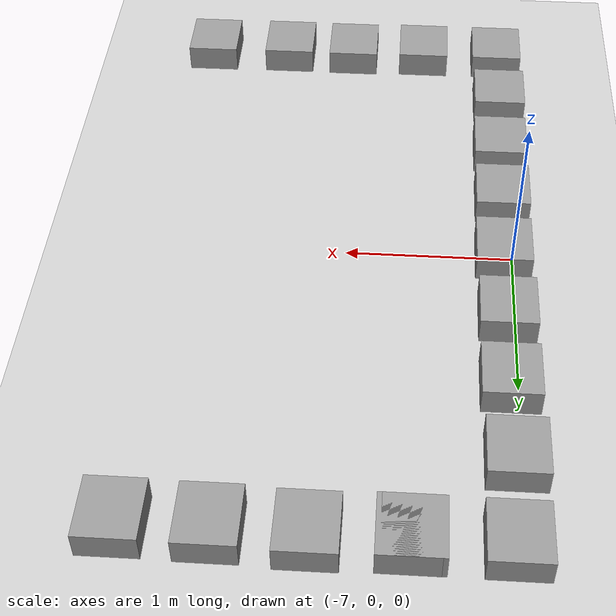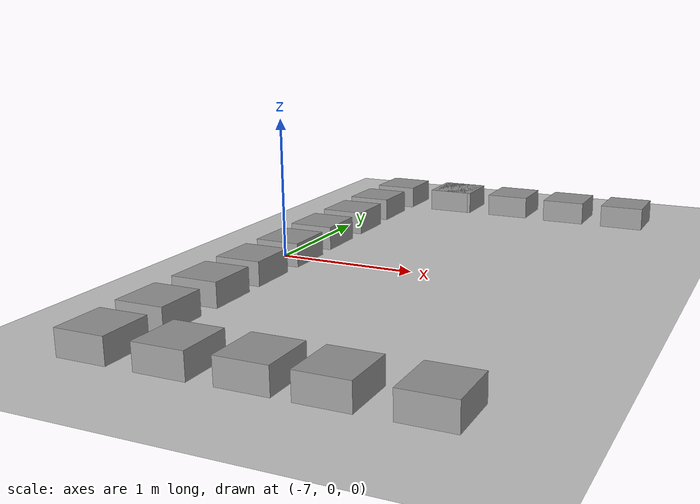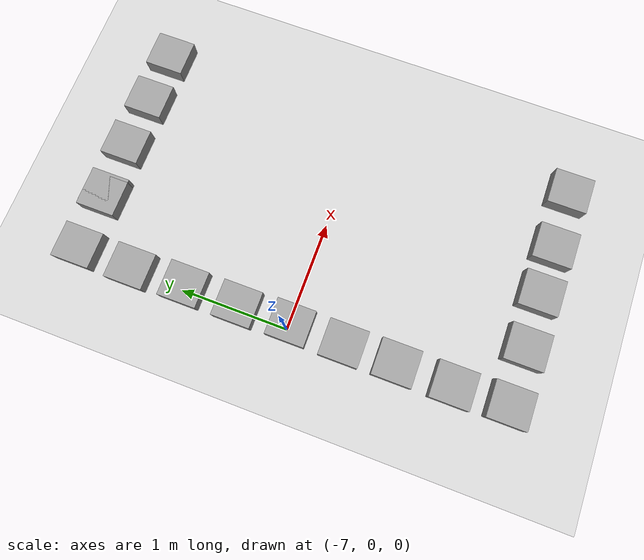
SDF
<sdf version="1.7">
 <world name="default">
  <model name="ground_plane">
   <static>1</static>
   <link name="link">
    <collision name="collision">
     <geometry><plane><normal>0 0 1</normal><size>100 100</size></plane></geometry>
     <surface>
      <contact><collide_bitmask>65535</collide_bitmask></contact>
      <friction><ode><mu>100</mu><mu2>50</mu2></ode></friction>
     </surface>
    </collision>
    <visual name="visual">
     <cast_shadows>0</cast_shadows>
     <geometry><plane><normal>0 0 1</normal><size>100 100</size></plane></geometry>
     <material>
      <script><uri>file://media/materials/scripts/gazebo.material</uri><name>Gazebo/Grey</name></script>
     </material>
    </visual>
   </link>
  </model>
  <model name="Room">
   <link name="link_0">
    <inertial>
     <mass>0.0389039</mass>
     <inertia>
      <ixx>0.000767207</ixx>
      <ixy>0</ixy>
      <ixz>0</ixz>
      <iyy>0.000705813</iyy>
      <iyz>0</iyz>
      <izz>0.000767038</izz>
     </inertia>
    </inertial>
    <pose>1.41657 1.8721 -0 0 -0 0</pose>
    <visual name="visual">
     <geometry><box><size>0.329892 0.357444 0.329971</size></box></geometry>
     <material>
      <lighting>1</lighting>
      <script><uri>file://media/materials/scripts/gazebo.material</uri><name>Gazebo/Grey</name></script>
      <shader type="pixel"/>
     </material>
    </visual>
    <collision name="collision">
     <geometry><box><size>0.329892 0.357444 0.329971</size></box></geometry>
     <surface>
      <friction>
       <ode><mu>1</mu><mu2>1</mu2><fdir1>0 0 0</fdir1><slip1>0</slip1><slip2>0</slip2></ode>
       <torsional>
        <coefficient>1</coefficient>
        <patch_radius>0</patch_radius>
        <surface_radius>0</surface_radius>
        <use_patch_radius>1</use_patch_radius>
        <ode><slip>0</slip></ode>
       </torsional>
      </friction>
      <bounce><restitution_coefficient>0</restitution_coefficient><threshold>1e+06</threshold></bounce>
      <contact>
       <collide_without_contact>0</collide_without_contact>
       <collide_without_contact_bitmask>1</collide_without_contact_bitmask>
       <collide_bitmask>1</collide_bitmask>
       <ode>
        <soft_cfm>0</soft_cfm>
        <soft_erp>0.2</soft_erp>
        <kp>1e+13</kp>
        <kd>1</kd>
        <max_vel>0.01</max_vel>
        <min_depth>0</min_depth>
       </ode>
       <bullet>
        <split_impulse>1</split_impulse>
        <split_impulse_penetration_threshold>-0.01</split_impulse_penetration_threshold>
        <soft_cfm>0</soft_cfm>
        <soft_erp>0.2</soft_erp>
        <kp>1e+13</kp>
        <kd>1</kd>
       </bullet>
      </contact>
     </surface>
    </collision>
   </link>
   <link name="link_0_clone">
    <inertial>
     <mass>0.0389039</mass>
     <inertia>
      <ixx>0.000767207</ixx>
      <ixy>0</ixy>
      <ixz>0</ixz>
      <iyy>0.000705813</iyy>
      <iyz>0</iyz>
      <izz>0.000767038</izz>
     </inertia>
    </inertial>
    <pose>0.444466 1.89101 0 0 -0 0</pose>
    <visual name="visual">
     <geometry><box><size>0.329892 0.357444 0.329971</size></box></geometry>
     <material>
      <lighting>1</lighting>
      <script><uri>file://media/materials/scripts/gazebo.material</uri><name>Gazebo/Grey</name></script>
      <shader type="pixel"/>
     </material>
    </visual>
    <collision name="collision">
     <geometry><box><size>0.329892 0.357444 0.329971</size></box></geometry>
     <surface>
      <friction>
       <ode><mu>1</mu><mu2>1</mu2><fdir1>0 0 0</fdir1><slip1>0</slip1><slip2>0</slip2></ode>
       <torsional>
        <coefficient>1</coefficient>
        <patch_radius>0</patch_radius>
        <surface_radius>0</surface_radius>
        <use_patch_radius>1</use_patch_radius>
        <ode><slip>0</slip></ode>
       </torsional>
      </friction>
      <bounce><restitution_coefficient>0</restitution_coefficient><threshold>1e+06</threshold></bounce>
      <contact>
       <collide_without_contact>0</collide_without_contact>
       <collide_without_contact_bitmask>1</collide_without_contact_bitmask>
       <collide_bitmask>1</collide_bitmask>
       <ode>
        <soft_cfm>0</soft_cfm>
        <soft_erp>0.2</soft_erp>
        <kp>1e+13</kp>
        <kd>1</kd>
        <max_vel>0.01</max_vel>
        <min_depth>0</min_depth>
       </ode>
       <bullet>
        <split_impulse>1</split_impulse>
        <split_impulse_penetration_threshold>-0.01</split_impulse_penetration_threshold>
        <soft_cfm>0</soft_cfm>
        <soft_erp>0.2</soft_erp>
        <kp>1e+13</kp>
        <kd>1</kd>
       </bullet>
      </contact>
     </surface>
    </collision>
   </link>
   <link name="link_0_clone_0">
    <inertial>
     <mass>0.0389039</mass>
     <inertia>
      <ixx>0.000767207</ixx>
      <ixy>0</ixy>
      <ixz>0</ixz>
      <iyy>0.000705813</iyy>
      <iyz>0</iyz>
      <izz>0.000767038</izz>
     </inertia>
    </inertial>
    <pose>-0.590417 1.88357 0 0 -0 0</pose>
    <visual name="visual">
     <geometry><box><size>0.329892 0.357444 0.329971</size></box></geometry>
     <material>
      <lighting>1</lighting>
      <script><uri>file://media/materials/scripts/gazebo.material</uri><name>Gazebo/Grey</name></script>
      <shader type="pixel"/>
     </material>
    </visual>
    <collision name="collision">
     <geometry><box><size>0.329892 0.357444 0.329971</size></box></geometry>
     <surface>
      <friction>
       <ode><mu>1</mu><mu2>1</mu2><fdir1>0 0 0</fdir1><slip1>0</slip1><slip2>0</slip2></ode>
       <torsional>
        <coefficient>1</coefficient>
        <patch_radius>0</patch_radius>
        <surface_radius>0</surface_radius>
        <use_patch_radius>1</use_patch_radius>
        <ode><slip>0</slip></ode>
       </torsional>
      </friction>
      <bounce><restitution_coefficient>0</restitution_coefficient><threshold>1e+06</threshold></bounce>
      <contact>
       <collide_without_contact>0</collide_without_contact>
       <collide_without_contact_bitmask>1</collide_without_contact_bitmask>
       <collide_bitmask>1</collide_bitmask>
       <ode>
        <soft_cfm>0</soft_cfm>
        <soft_erp>0.2</soft_erp>
        <kp>1e+13</kp>
        <kd>1</kd>
        <max_vel>0.01</max_vel>
        <min_depth>0</min_depth>
       </ode>
       <bullet>
        <split_impulse>1</split_impulse>
        <split_impulse_penetration_threshold>-0.01</split_impulse_penetration_threshold>
        <soft_cfm>0</soft_cfm>
        <soft_erp>0.2</soft_erp>
        <kp>1e+13</kp>
        <kd>1</kd>
       </bullet>
      </contact>
     </surface>
    </collision>
   </link>
   <link name="link_0_clone_1">
    <inertial>
     <mass>0.0389039</mass>
     <inertia>
      <ixx>0.000767207</ixx>
      <ixy>0</ixy>
      <ixz>0</ixz>
      <iyy>0.000705813</iyy>
      <iyz>0</iyz>
      <izz>0.000767038</izz>
     </inertia>
    </inertial>
    <pose>-0.586519 0.866204 0 0 -0 0</pose>
    <visual name="visual">
     <geometry><box><size>0.329892 0.357444 0.329971</size></box></geometry>
     <material>
      <lighting>1</lighting>
      <script><uri>file://media/materials/scripts/gazebo.material</uri><name>Gazebo/Grey</name></script>
      <shader type="pixel"/>
     </material>
    </visual>
    <collision name="collision">
     <geometry><box><size>0.329892 0.357444 0.329971</size></box></geometry>
     <surface>
      <friction>
       <ode><mu>1</mu><mu2>1</mu2><fdir1>0 0 0</fdir1><slip1>0</slip1><slip2>0</slip2></ode>
       <torsional>
        <coefficient>1</coefficient>
        <patch_radius>0</patch_radius>
        <surface_radius>0</surface_radius>
        <use_patch_radius>1</use_patch_radius>
        <ode><slip>0</slip></ode>
       </torsional>
      </friction>
      <bounce><restitution_coefficient>0</restitution_coefficient><threshold>1e+06</threshold></bounce>
      <contact>
       <collide_without_contact>0</collide_without_contact>
       <collide_without_contact_bitmask>1</collide_without_contact_bitmask>
       <collide_bitmask>1</collide_bitmask>
       <ode>
        <soft_cfm>0</soft_cfm>
        <soft_erp>0.2</soft_erp>
        <kp>1e+13</kp>
        <kd>1</kd>
        <max_vel>0.01</max_vel>
        <min_depth>0</min_depth>
       </ode>
       <bullet>
        <split_impulse>1</split_impulse>
        <split_impulse_penetration_threshold>-0.01</split_impulse_penetration_threshold>
        <soft_cfm>0</soft_cfm>
        <soft_erp>0.2</soft_erp>
        <kp>1e+13</kp>
        <kd>1</kd>
       </bullet>
      </contact>
     </surface>
    </collision>
   </link>
   <link name="link_0_clone_10">
    <inertial>
     <mass>0.0389039</mass>
     <inertia>
      <ixx>0.000767207</ixx>
      <ixy>0</ixy>
      <ixz>0</ixz>
      <iyy>0.000705813</iyy>
      <iyz>0</iyz>
      <izz>0.000767038</izz>
     </inertia>
    </inertial>
    <pose>-0.582708 -0.615817 0 0 -0 0</pose>
    <visual name="visual">
     <geometry><box><size>0.329892 0.357444 0.329971</size></box></geometry>
     <material>
      <lighting>1</lighting>
      <script><uri>file://media/materials/scripts/gazebo.material</uri><name>Gazebo/Grey</name></script>
      <shader type="pixel"/>
     </material>
    </visual>
    <collision name="collision">
     <geometry><box><size>0.329892 0.357444 0.329971</size></box></geometry>
     <surface>
      <friction>
       <ode><mu>1</mu><mu2>1</mu2><fdir1>0 0 0</fdir1><slip1>0</slip1><slip2>0</slip2></ode>
       <torsional>
        <coefficient>1</coefficient>
        <patch_radius>0</patch_radius>
        <surface_radius>0</surface_radius>
        <use_patch_radius>1</use_patch_radius>
        <ode><slip>0</slip></ode>
       </torsional>
      </friction>
      <bounce><restitution_coefficient>0</restitution_coefficient><threshold>1e+06</threshold></bounce>
      <contact>
       <collide_without_contact>0</collide_without_contact>
       <collide_without_contact_bitmask>1</collide_without_contact_bitmask>
       <collide_bitmask>1</collide_bitmask>
       <ode>
        <soft_cfm>0</soft_cfm>
        <soft_erp>0.2</soft_erp>
        <kp>1e+13</kp>
        <kd>1</kd>
        <max_vel>0.01</max_vel>
        <min_depth>0</min_depth>
       </ode>
       <bullet>
        <split_impulse>1</split_impulse>
        <split_impulse_penetration_threshold>-0.01</split_impulse_penetration_threshold>
        <soft_cfm>0</soft_cfm>
        <soft_erp>0.2</soft_erp>
        <kp>1e+13</kp>
        <kd>1</kd>
       </bullet>
      </contact>
     </surface>
    </collision>
   </link>
   <link name="link_0_clone_11">
    <inertial>
     <mass>0.0389039</mass>
     <inertia>
      <ixx>0.000767207</ixx>
      <ixy>0</ixy>
      <ixz>0</ixz>
      <iyy>0.000705813</iyy>
      <iyz>0</iyz>
      <izz>0.000767038</izz>
     </inertia>
    </inertial>
    <pose>-0.586948 0.362993 0 0 -0 0</pose>
    <visual name="visual">
     <geometry><box><size>0.329892 0.357444 0.329971</size></box></geometry>
     <material>
      <lighting>1</lighting>
      <script><uri>file://media/materials/scripts/gazebo.material</uri><name>Gazebo/Grey</name></script>
      <shader type="pixel"/>
     </material>
    </visual>
    <collision name="collision">
     <geometry><box><size>0.329892 0.357444 0.329971</size></box></geometry>
     <surface>
      <friction>
       <ode><mu>1</mu><mu2>1</mu2><fdir1>0 0 0</fdir1><slip1>0</slip1><slip2>0</slip2></ode>
       <torsional>
        <coefficient>1</coefficient>
        <patch_radius>0</patch_radius>
        <surface_radius>0</surface_radius>
        <use_patch_radius>1</use_patch_radius>
        <ode><slip>0</slip></ode>
       </torsional>
      </friction>
      <bounce><restitution_coefficient>0</restitution_coefficient><threshold>1e+06</threshold></bounce>
      <contact>
       <collide_without_contact>0</collide_without_contact>
       <collide_without_contact_bitmask>1</collide_without_contact_bitmask>
       <collide_bitmask>1</collide_bitmask>
       <ode>
        <soft_cfm>0</soft_cfm>
        <soft_erp>0.2</soft_erp>
        <kp>1e+13</kp>
        <kd>1</kd>
        <max_vel>0.01</max_vel>
        <min_depth>0</min_depth>
       </ode>
       <bullet>
        <split_impulse>1</split_impulse>
        <split_impulse_penetration_threshold>-0.01</split_impulse_penetration_threshold>
        <soft_cfm>0</soft_cfm>
        <soft_erp>0.2</soft_erp>
        <kp>1e+13</kp>
        <kd>1</kd>
       </bullet>
      </contact>
     </surface>
    </collision>
   </link>
   <link name="link_0_clone_12">
    <inertial>
     <mass>0.0389039</mass>
     <inertia>
      <ixx>0.000767207</ixx>
      <ixy>0</ixy>
      <ixz>0</ixz>
      <iyy>0.000705813</iyy>
      <iyz>0</iyz>
      <izz>0.000767038</izz>
     </inertia>
    </inertial>
    <pose>-0.601316 1.36889 0 0 -0 0</pose>
    <visual name="visual">
     <geometry><box><size>0.329892 0.357444 0.329971</size></box></geometry>
     <material>
      <lighting>1</lighting>
      <script><uri>file://media/materials/scripts/gazebo.material</uri><name>Gazebo/Grey</name></script>
      <shader type="pixel"/>
     </material>
    </visual>
    <collision name="collision">
     <geometry><box><size>0.329892 0.357444 0.329971</size></box></geometry>
     <surface>
      <friction>
       <ode><mu>1</mu><mu2>1</mu2><fdir1>0 0 0</fdir1><slip1>0</slip1><slip2>0</slip2></ode>
       <torsional>
        <coefficient>1</coefficient>
        <patch_radius>0</patch_radius>
        <surface_radius>0</surface_radius>
        <use_patch_radius>1</use_patch_radius>
        <ode><slip>0</slip></ode>
       </torsional>
      </friction>
      <bounce><restitution_coefficient>0</restitution_coefficient><threshold>1e+06</threshold></bounce>
      <contact>
       <collide_without_contact>0</collide_without_contact>
       <collide_without_contact_bitmask>1</collide_without_contact_bitmask>
       <collide_bitmask>1</collide_bitmask>
       <ode>
        <soft_cfm>0</soft_cfm>
        <soft_erp>0.2</soft_erp>
        <kp>1e+13</kp>
        <kd>1</kd>
        <max_vel>0.01</max_vel>
        <min_depth>0</min_depth>
       </ode>
       <bullet>
        <split_impulse>1</split_impulse>
        <split_impulse_penetration_threshold>-0.01</split_impulse_penetration_threshold>
        <soft_cfm>0</soft_cfm>
        <soft_erp>0.2</soft_erp>
        <kp>1e+13</kp>
        <kd>1</kd>
       </bullet>
      </contact>
     </surface>
    </collision>
   </link>
   <link name="link_0_clone_13">
    <inertial>
     <mass>0.0389039</mass>
     <inertia>
      <ixx>0.000767207</ixx>
      <ixy>0</ixy>
      <ixz>0</ixz>
      <iyy>0.000705813</iyy>
      <iyz>0</iyz>
      <izz>0.000767038</izz>
     </inertia>
    </inertial>
    <pose>-0.079622 1.88167 0 0 -0 0</pose>
    <visual name="visual">
     <geometry><box><size>0.329892 0.357444 0.329971</size></box></geometry>
     <material>
      <lighting>1</lighting>
      <script><uri>file://media/materials/scripts/gazebo.material</uri><name>Gazebo/Grey</name></script>
      <shader type="pixel"/>
     </material>
    </visual>
    <collision name="collision">
     <geometry><box><size>0.329892 0.357444 0.329971</size></box></geometry>
     <surface>
      <friction>
       <ode><mu>1</mu><mu2>1</mu2><fdir1>0 0 0</fdir1><slip1>0</slip1><slip2>0</slip2></ode>
       <torsional>
        <coefficient>1</coefficient>
        <patch_radius>0</patch_radius>
        <surface_radius>0</surface_radius>
        <use_patch_radius>1</use_patch_radius>
        <ode><slip>0</slip></ode>
       </torsional>
      </friction>
      <bounce><restitution_coefficient>0</restitution_coefficient><threshold>1e+06</threshold></bounce>
      <contact>
       <collide_without_contact>0</collide_without_contact>
       <collide_without_contact_bitmask>1</collide_without_contact_bitmask>
       <collide_bitmask>1</collide_bitmask>
       <ode>
        <soft_cfm>0</soft_cfm>
        <soft_erp>0.2</soft_erp>
        <kp>1e+13</kp>
        <kd>1</kd>
        <max_vel>0.01</max_vel>
        <min_depth>0</min_depth>
       </ode>
       <bullet>
        <split_impulse>1</split_impulse>
        <split_impulse_penetration_threshold>-0.01</split_impulse_penetration_threshold>
        <soft_cfm>0</soft_cfm>
        <soft_erp>0.2</soft_erp>
        <kp>1e+13</kp>
        <kd>1</kd>
       </bullet>
      </contact>
     </surface>
    </collision>
   </link>
   <link name="link_0_clone_14">
    <inertial>
     <mass>0.0389039</mass>
     <inertia>
      <ixx>0.000767207</ixx>
      <ixy>0</ixy>
      <ixz>0</ixz>
      <iyy>0.000705813</iyy>
      <iyz>0</iyz>
      <izz>0.000767038</izz>
     </inertia>
    </inertial>
    <pose>-0.578587 -2.09605 0 0 -0 0</pose>
    <visual name="visual">
     <geometry><box><size>0.329892 0.357444 0.329971</size></box></geometry>
     <material>
      <lighting>1</lighting>
      <script><uri>file://media/materials/scripts/gazebo.material</uri><name>Gazebo/Grey</name></script>
      <shader type="pixel"/>
     </material>
    </visual>
    <collision name="collision">
     <geometry><box><size>0.329892 0.357444 0.329971</size></box></geometry>
     <surface>
      <friction>
       <ode><mu>1</mu><mu2>1</mu2><fdir1>0 0 0</fdir1><slip1>0</slip1><slip2>0</slip2></ode>
       <torsional>
        <coefficient>1</coefficient>
        <patch_radius>0</patch_radius>
        <surface_radius>0</surface_radius>
        <use_patch_radius>1</use_patch_radius>
        <ode><slip>0</slip></ode>
       </torsional>
      </friction>
      <bounce><restitution_coefficient>0</restitution_coefficient><threshold>1e+06</threshold></bounce>
      <contact>
       <collide_without_contact>0</collide_without_contact>
       <collide_without_contact_bitmask>1</collide_without_contact_bitmask>
       <collide_bitmask>1</collide_bitmask>
       <ode>
        <soft_cfm>0</soft_cfm>
        <soft_erp>0.2</soft_erp>
        <kp>1e+13</kp>
        <kd>1</kd>
        <max_vel>0.01</max_vel>
        <min_depth>0</min_depth>
       </ode>
       <bullet>
        <split_impulse>1</split_impulse>
        <split_impulse_penetration_threshold>-0.01</split_impulse_penetration_threshold>
        <soft_cfm>0</soft_cfm>
        <soft_erp>0.2</soft_erp>
        <kp>1e+13</kp>
        <kd>1</kd>
       </bullet>
      </contact>
     </surface>
    </collision>
   </link>
   <link name="link_0_clone_15">
    <inertial>
     <mass>0.0389039</mass>
     <inertia>
      <ixx>0.000767207</ixx>
      <ixy>0</ixy>
      <ixz>0</ixz>
      <iyy>0.000705813</iyy>
      <iyz>0</iyz>
      <izz>0.000767038</izz>
     </inertia>
    </inertial>
    <pose>-0.588752 -1.60221 0 0 -0 0</pose>
    <visual name="visual">
     <geometry><box><size>0.329892 0.357444 0.329971</size></box></geometry>
     <material>
      <lighting>1</lighting>
      <script><uri>file://media/materials/scripts/gazebo.material</uri><name>Gazebo/Grey</name></script>
      <shader type="pixel"/>
     </material>
    </visual>
    <collision name="collision">
     <geometry><box><size>0.329892 0.357444 0.329971</size></box></geometry>
     <surface>
      <friction>
       <ode><mu>1</mu><mu2>1</mu2><fdir1>0 0 0</fdir1><slip1>0</slip1><slip2>0</slip2></ode>
       <torsional>
        <coefficient>1</coefficient>
        <patch_radius>0</patch_radius>
        <surface_radius>0</surface_radius>
        <use_patch_radius>1</use_patch_radius>
        <ode><slip>0</slip></ode>
       </torsional>
      </friction>
      <bounce><restitution_coefficient>0</restitution_coefficient><threshold>1e+06</threshold></bounce>
      <contact>
       <collide_without_contact>0</collide_without_contact>
       <collide_without_contact_bitmask>1</collide_without_contact_bitmask>
       <collide_bitmask>1</collide_bitmask>
       <ode>
        <soft_cfm>0</soft_cfm>
        <soft_erp>0.2</soft_erp>
        <kp>1e+13</kp>
        <kd>1</kd>
        <max_vel>0.01</max_vel>
        <min_depth>0</min_depth>
       </ode>
       <bullet>
        <split_impulse>1</split_impulse>
        <split_impulse_penetration_threshold>-0.01</split_impulse_penetration_threshold>
        <soft_cfm>0</soft_cfm>
        <soft_erp>0.2</soft_erp>
        <kp>1e+13</kp>
        <kd>1</kd>
       </bullet>
      </contact>
     </surface>
    </collision>
   </link>
   <link name="link_0_clone_2">
    <inertial>
     <mass>0.0389039</mass>
     <inertia>
      <ixx>0.000767207</ixx>
      <ixy>0</ixy>
      <ixz>0</ixz>
      <iyy>0.000705813</iyy>
      <iyz>0</iyz>
      <izz>0.000767038</izz>
     </inertia>
    </inertial>
    <pose>-0.57722 -0.129305 0 0 -0 0</pose>
    <visual name="visual">
     <geometry><box><size>0.329892 0.357444 0.329971</size></box></geometry>
     <material>
      <lighting>1</lighting>
      <script><uri>file://media/materials/scripts/gazebo.material</uri><name>Gazebo/Grey</name></script>
      <shader type="pixel"/>
     </material>
    </visual>
    <collision name="collision">
     <geometry><box><size>0.329892 0.357444 0.329971</size></box></geometry>
     <surface>
      <friction>
       <ode><mu>1</mu><mu2>1</mu2><fdir1>0 0 0</fdir1><slip1>0</slip1><slip2>0</slip2></ode>
       <torsional>
        <coefficient>1</coefficient>
        <patch_radius>0</patch_radius>
        <surface_radius>0</surface_radius>
        <use_patch_radius>1</use_patch_radius>
        <ode><slip>0</slip></ode>
       </torsional>
      </friction>
      <bounce><restitution_coefficient>0</restitution_coefficient><threshold>1e+06</threshold></bounce>
      <contact>
       <collide_without_contact>0</collide_without_contact>
       <collide_without_contact_bitmask>1</collide_without_contact_bitmask>
       <collide_bitmask>1</collide_bitmask>
       <ode>
        <soft_cfm>0</soft_cfm>
        <soft_erp>0.2</soft_erp>
        <kp>1e+13</kp>
        <kd>1</kd>
        <max_vel>0.01</max_vel>
        <min_depth>0</min_depth>
       </ode>
       <bullet>
        <split_impulse>1</split_impulse>
        <split_impulse_penetration_threshold>-0.01</split_impulse_penetration_threshold>
        <soft_cfm>0</soft_cfm>
        <soft_erp>0.2</soft_erp>
        <kp>1e+13</kp>
        <kd>1</kd>
       </bullet>
      </contact>
     </surface>
    </collision>
   </link>
   <link name="link_0_clone_3">
    <inertial>
     <mass>0.0389039</mass>
     <inertia>
      <ixx>0.000767207</ixx>
      <ixy>0</ixy>
      <ixz>0</ixz>
      <iyy>0.000705813</iyy>
      <iyz>0</iyz>
      <izz>0.000767038</izz>
     </inertia>
    </inertial>
    <pose>-0.581743 -1.09206 0 0 -0 0</pose>
    <visual name="visual">
     <geometry><box><size>0.329892 0.357444 0.329971</size></box></geometry>
     <material>
      <lighting>1</lighting>
      <script><uri>file://media/materials/scripts/gazebo.material</uri><name>Gazebo/Grey</name></script>
      <shader type="pixel"/>
     </material>
    </visual>
    <collision name="collision">
     <geometry><box><size>0.329892 0.357444 0.329971</size></box></geometry>
     <surface>
      <friction>
       <ode><mu>1</mu><mu2>1</mu2><fdir1>0 0 0</fdir1><slip1>0</slip1><slip2>0</slip2></ode>
       <torsional>
        <coefficient>1</coefficient>
        <patch_radius>0</patch_radius>
        <surface_radius>0</surface_radius>
        <use_patch_radius>1</use_patch_radius>
        <ode><slip>0</slip></ode>
       </torsional>
      </friction>
      <bounce><restitution_coefficient>0</restitution_coefficient><threshold>1e+06</threshold></bounce>
      <contact>
       <collide_without_contact>0</collide_without_contact>
       <collide_without_contact_bitmask>1</collide_without_contact_bitmask>
       <collide_bitmask>1</collide_bitmask>
       <ode>
        <soft_cfm>0</soft_cfm>
        <soft_erp>0.2</soft_erp>
        <kp>1e+13</kp>
        <kd>1</kd>
        <max_vel>0.01</max_vel>
        <min_depth>0</min_depth>
       </ode>
       <bullet>
        <split_impulse>1</split_impulse>
        <split_impulse_penetration_threshold>-0.01</split_impulse_penetration_threshold>
        <soft_cfm>0</soft_cfm>
        <soft_erp>0.2</soft_erp>
        <kp>1e+13</kp>
        <kd>1</kd>
       </bullet>
      </contact>
     </surface>
    </collision>
   </link>
   <link name="link_0_clone_4">
    <inertial>
     <mass>0.0389039</mass>
     <inertia>
      <ixx>0.000767207</ixx>
      <ixy>0</ixy>
      <ixz>0</ixz>
      <iyy>0.000705813</iyy>
      <iyz>0</iyz>
      <izz>0.000767038</izz>
     </inertia>
    </inertial>
    <pose>0.417898 -2.08494 0 0 -0 0</pose>
    <visual name="visual">
     <geometry><box><size>0.329892 0.357444 0.329971</size></box></geometry>
     <material>
      <lighting>1</lighting>
      <script><uri>file://media/materials/scripts/gazebo.material</uri><name>Gazebo/Grey</name></script>
      <shader type="pixel"/>
     </material>
    </visual>
    <collision name="collision">
     <geometry><box><size>0.329892 0.357444 0.329971</size></box></geometry>
     <surface>
      <friction>
       <ode><mu>1</mu><mu2>1</mu2><fdir1>0 0 0</fdir1><slip1>0</slip1><slip2>0</slip2></ode>
       <torsional>
        <coefficient>1</coefficient>
        <patch_radius>0</patch_radius>
        <surface_radius>0</surface_radius>
        <use_patch_radius>1</use_patch_radius>
        <ode><slip>0</slip></ode>
       </torsional>
      </friction>
      <bounce><restitution_coefficient>0</restitution_coefficient><threshold>1e+06</threshold></bounce>
      <contact>
       <collide_without_contact>0</collide_without_contact>
       <collide_without_contact_bitmask>1</collide_without_contact_bitmask>
       <collide_bitmask>1</collide_bitmask>
       <ode>
        <soft_cfm>0</soft_cfm>
        <soft_erp>0.2</soft_erp>
        <kp>1e+13</kp>
        <kd>1</kd>
        <max_vel>0.01</max_vel>
        <min_depth>0</min_depth>
       </ode>
       <bullet>
        <split_impulse>1</split_impulse>
        <split_impulse_penetration_threshold>-0.01</split_impulse_penetration_threshold>
        <soft_cfm>0</soft_cfm>
        <soft_erp>0.2</soft_erp>
        <kp>1e+13</kp>
        <kd>1</kd>
       </bullet>
      </contact>
     </surface>
    </collision>
   </link>
   <link name="link_0_clone_5">
    <inertial>
     <mass>0.0389039</mass>
     <inertia>
      <ixx>0.000767207</ixx>
      <ixy>0</ixy>
      <ixz>0</ixz>
      <iyy>0.000705813</iyy>
      <iyz>0</iyz>
      <izz>0.000767038</izz>
     </inertia>
    </inertial>
    <pose>1.40097 -2.08258 0 0 -0 0</pose>
    <visual name="visual">
     <geometry><box><size>0.329892 0.357444 0.329971</size></box></geometry>
     <material>
      <lighting>1</lighting>
      <script><uri>file://media/materials/scripts/gazebo.material</uri><name>Gazebo/Grey</name></script>
      <shader type="pixel"/>
     </material>
    </visual>
    <collision name="collision">
     <geometry><box><size>0.329892 0.357444 0.329971</size></box></geometry>
     <surface>
      <friction>
       <ode><mu>1</mu><mu2>1</mu2><fdir1>0 0 0</fdir1><slip1>0</slip1><slip2>0</slip2></ode>
       <torsional>
        <coefficient>1</coefficient>
        <patch_radius>0</patch_radius>
        <surface_radius>0</surface_radius>
        <use_patch_radius>1</use_patch_radius>
        <ode><slip>0</slip></ode>
       </torsional>
      </friction>
      <bounce><restitution_coefficient>0</restitution_coefficient><threshold>1e+06</threshold></bounce>
      <contact>
       <collide_without_contact>0</collide_without_contact>
       <collide_without_contact_bitmask>1</collide_without_contact_bitmask>
       <collide_bitmask>1</collide_bitmask>
       <ode>
        <soft_cfm>0</soft_cfm>
        <soft_erp>0.2</soft_erp>
        <kp>1e+13</kp>
        <kd>1</kd>
        <max_vel>0.01</max_vel>
        <min_depth>0</min_depth>
       </ode>
       <bullet>
        <split_impulse>1</split_impulse>
        <split_impulse_penetration_threshold>-0.01</split_impulse_penetration_threshold>
        <soft_cfm>0</soft_cfm>
        <soft_erp>0.2</soft_erp>
        <kp>1e+13</kp>
        <kd>1</kd>
       </bullet>
      </contact>
     </surface>
    </collision>
   </link>
   <link name="link_0_clone_6">
    <inertial>
     <mass>0.0389039</mass>
     <inertia>
      <ixx>0.000767207</ixx>
      <ixy>0</ixy>
      <ixz>0</ixz>
      <iyy>0.000705813</iyy>
      <iyz>0</iyz>
      <izz>0.000767038</izz>
     </inertia>
    </inertial>
    <pose>0.931584 1.87786 0 0 -0 0</pose>
    <visual name="visual">
     <geometry><box><size>0.329892 0.357444 0.329971</size></box></geometry>
     <material>
      <lighting>1</lighting>
      <script><uri>file://media/materials/scripts/gazebo.material</uri><name>Gazebo/Grey</name></script>
      <shader type="pixel"/>
     </material>
    </visual>
    <collision name="collision">
     <geometry><box><size>0.329892 0.357444 0.329971</size></box></geometry>
     <surface>
      <friction>
       <ode><mu>1</mu><mu2>1</mu2><fdir1>0 0 0</fdir1><slip1>0</slip1><slip2>0</slip2></ode>
       <torsional>
        <coefficient>1</coefficient>
        <patch_radius>0</patch_radius>
        <surface_radius>0</surface_radius>
        <use_patch_radius>1</use_patch_radius>
        <ode><slip>0</slip></ode>
       </torsional>
      </friction>
      <bounce><restitution_coefficient>0</restitution_coefficient><threshold>1e+06</threshold></bounce>
      <contact>
       <collide_without_contact>0</collide_without_contact>
       <collide_without_contact_bitmask>1</collide_without_contact_bitmask>
       <collide_bitmask>1</collide_bitmask>
       <ode>
        <soft_cfm>0</soft_cfm>
        <soft_erp>0.2</soft_erp>
        <kp>1e+13</kp>
        <kd>1</kd>
        <max_vel>0.01</max_vel>
        <min_depth>0</min_depth>
       </ode>
       <bullet>
        <split_impulse>1</split_impulse>
        <split_impulse_penetration_threshold>-0.01</split_impulse_penetration_threshold>
        <soft_cfm>0</soft_cfm>
        <soft_erp>0.2</soft_erp>
        <kp>1e+13</kp>
        <kd>1</kd>
       </bullet>
      </contact>
     </surface>
    </collision>
   </link>
   <link name="link_0_clone_7">
    <inertial>
     <mass>0.0389039</mass>
     <inertia>
      <ixx>0.000767207</ixx>
      <ixy>0</ixy>
      <ixz>0</ixz>
      <iyy>0.000705813</iyy>
      <iyz>0</iyz>
      <izz>0.000767038</izz>
     </inertia>
    </inertial>
    <pose>-0.053063 1.88176 0 0 -0 0</pose>
    <visual name="visual">
     <geometry><box><size>0.329892 0.357444 0.329971</size></box></geometry>
     <material>
      <lighting>1</lighting>
      <script><uri>file://media/materials/scripts/gazebo.material</uri><name>Gazebo/Grey</name></script>
      <shader type="pixel"/>
     </material>
    </visual>
    <collision name="collision">
     <geometry><box><size>0.329892 0.357444 0.329971</size></box></geometry>
     <surface>
      <friction>
       <ode><mu>1</mu><mu2>1</mu2><fdir1>0 0 0</fdir1><slip1>0</slip1><slip2>0</slip2></ode>
       <torsional>
        <coefficient>1</coefficient>
        <patch_radius>0</patch_radius>
        <surface_radius>0</surface_radius>
        <use_patch_radius>1</use_patch_radius>
        <ode><slip>0</slip></ode>
       </torsional>
      </friction>
      <bounce><restitution_coefficient>0</restitution_coefficient><threshold>1e+06</threshold></bounce>
      <contact>
       <collide_without_contact>0</collide_without_contact>
       <collide_without_contact_bitmask>1</collide_without_contact_bitmask>
       <collide_bitmask>1</collide_bitmask>
       <ode>
        <soft_cfm>0</soft_cfm>
        <soft_erp>0.2</soft_erp>
        <kp>1e+13</kp>
        <kd>1</kd>
        <max_vel>0.01</max_vel>
        <min_depth>0</min_depth>
       </ode>
       <bullet>
        <split_impulse>1</split_impulse>
        <split_impulse_penetration_threshold>-0.01</split_impulse_penetration_threshold>
        <soft_cfm>0</soft_cfm>
        <soft_erp>0.2</soft_erp>
        <kp>1e+13</kp>
        <kd>1</kd>
       </bullet>
      </contact>
     </surface>
    </collision>
   </link>
   <link name="link_0_clone_8">
    <inertial>
     <mass>0.0389039</mass>
     <inertia>
      <ixx>0.000767207</ixx>
      <ixy>0</ixy>
      <ixz>0</ixz>
      <iyy>0.000705813</iyy>
      <iyz>0</iyz>
      <izz>0.000767038</izz>
     </inertia>
    </inertial>
    <pose>-0.071354 -2.09518 0 0 -0 0</pose>
    <visual name="visual">
     <geometry><box><size>0.329892 0.357444 0.329971</size></box></geometry>
     <material>
      <lighting>1</lighting>
      <script><uri>file://media/materials/scripts/gazebo.material</uri><name>Gazebo/Grey</name></script>
      <shader type="pixel"/>
     </material>
    </visual>
    <collision name="collision">
     <geometry><box><size>0.329892 0.357444 0.329971</size></box></geometry>
     <surface>
      <friction>
       <ode><mu>1</mu><mu2>1</mu2><fdir1>0 0 0</fdir1><slip1>0</slip1><slip2>0</slip2></ode>
       <torsional>
        <coefficient>1</coefficient>
        <patch_radius>0</patch_radius>
        <surface_radius>0</surface_radius>
        <use_patch_radius>1</use_patch_radius>
        <ode><slip>0</slip></ode>
       </torsional>
      </friction>
      <bounce><restitution_coefficient>0</restitution_coefficient><threshold>1e+06</threshold></bounce>
      <contact>
       <collide_without_contact>0</collide_without_contact>
       <collide_without_contact_bitmask>1</collide_without_contact_bitmask>
       <collide_bitmask>1</collide_bitmask>
       <ode>
        <soft_cfm>0</soft_cfm>
        <soft_erp>0.2</soft_erp>
        <kp>1e+13</kp>
        <kd>1</kd>
        <max_vel>0.01</max_vel>
        <min_depth>0</min_depth>
       </ode>
       <bullet>
        <split_impulse>1</split_impulse>
        <split_impulse_penetration_threshold>-0.01</split_impulse_penetration_threshold>
        <soft_cfm>0</soft_cfm>
        <soft_erp>0.2</soft_erp>
        <kp>1e+13</kp>
        <kd>1</kd>
       </bullet>
      </contact>
     </surface>
    </collision>
   </link>
   <link name="link_0_clone_9">
    <inertial>
     <mass>0.0389039</mass>
     <inertia>
      <ixx>0.000767207</ixx>
      <ixy>0</ixy>
      <ixz>0</ixz>
      <iyy>0.000705813</iyy>
      <iyz>0</iyz>
      <izz>0.000767038</izz>
     </inertia>
    </inertial>
    <pose>0.866757 -2.08793 0 0 -0 0</pose>
    <visual name="visual">
     <geometry><box><size>0.329892 0.357444 0.329971</size></box></geometry>
     <material>
      <lighting>1</lighting>
      <script><uri>file://media/materials/scripts/gazebo.material</uri><name>Gazebo/Grey</name></script>
      <shader type="pixel"/>
     </material>
    </visual>
    <collision name="collision">
     <geometry><box><size>0.329892 0.357444 0.329971</size></box></geometry>
     <surface>
      <friction>
       <ode><mu>1</mu><mu2>1</mu2><fdir1>0 0 0</fdir1><slip1>0</slip1><slip2>0</slip2></ode>
       <torsional>
        <coefficient>1</coefficient>
        <patch_radius>0</patch_radius>
        <surface_radius>0</surface_radius>
        <use_patch_radius>1</use_patch_radius>
        <ode><slip>0</slip></ode>
       </torsional>
      </friction>
      <bounce><restitution_coefficient>0</restitution_coefficient><threshold>1e+06</threshold></bounce>
      <contact>
       <collide_without_contact>0</collide_without_contact>
       <collide_without_contact_bitmask>1</collide_without_contact_bitmask>
       <collide_bitmask>1</collide_bitmask>
       <ode>
        <soft_cfm>0</soft_cfm>
        <soft_erp>0.2</soft_erp>
        <kp>1e+13</kp>
        <kd>1</kd>
        <max_vel>0.01</max_vel>
        <min_depth>0</min_depth>
       </ode>
       <bullet>
        <split_impulse>1</split_impulse>
        <split_impulse_penetration_threshold>-0.01</split_impulse_penetration_threshold>
        <soft_cfm>0</soft_cfm>
        <soft_erp>0.2</soft_erp>
        <kp>1e+13</kp>
        <kd>1</kd>
       </bullet>
      </contact>
     </surface>
    </collision>
   </link>
   <static>1</static>
   <pose>-6.36623 0.11017 0 0 -0 0</pose>
  </model>
 </world>
</sdf>
